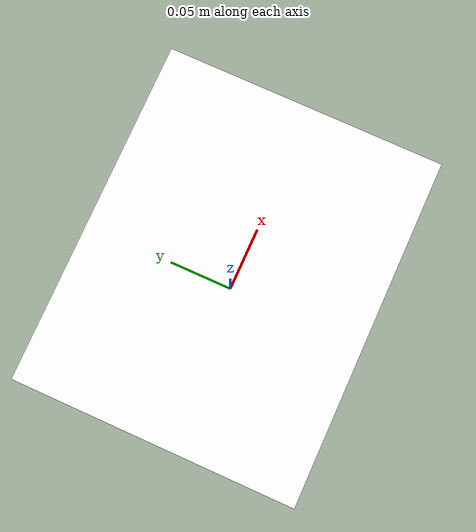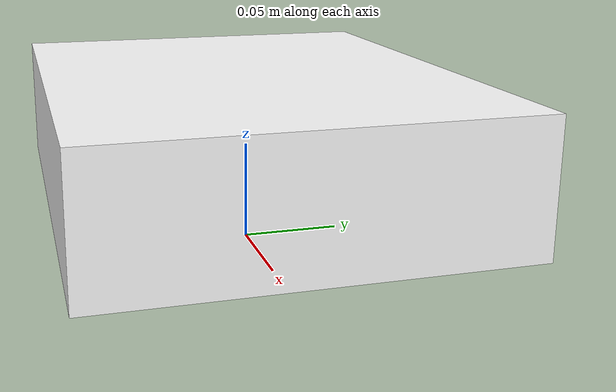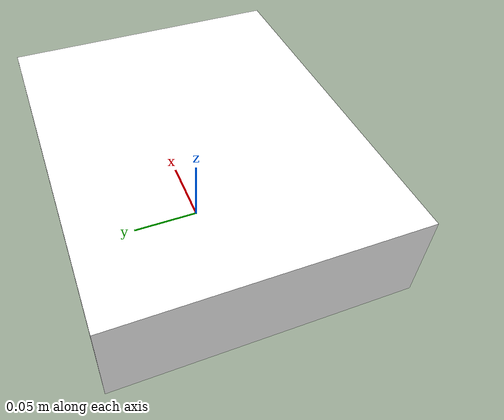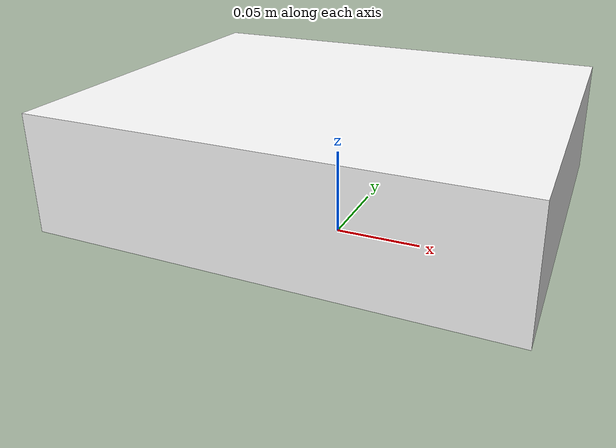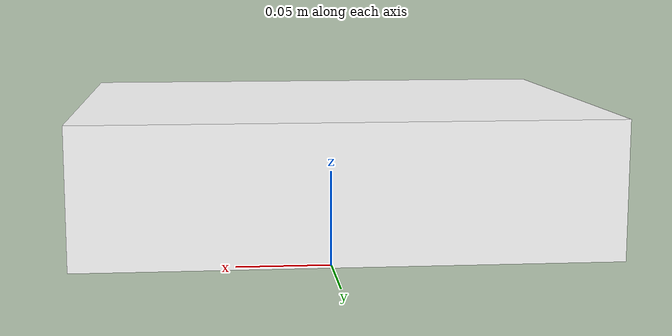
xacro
<?xml version="1.0"?>
<robot xmlns:xacro="http://www.ros.org.wiki.xacro" name="rpibot">

    <xacro:include filename="rpibot_colors.xacro" />

    <link name="base_link">

    </link>

    <joint name="chassis_joint" type="fixed">
        <parent link ="base_link"/>
        <child link="chassis"/>
        <origin xyz="0 0 0.023"/>
    </joint>

    <link name="chassis">
        <visual>
            <origin xyz="0 0 0.0325"/>
            <geometry>
                <box size="0.250 0.202 0.065"/>
            </geometry>
            <material name="white"/>
        </visual>
    </link>

</robot>

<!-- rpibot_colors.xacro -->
<robot xmlns:xacro="http://www.ros.org.wiki.xacro" >

    <material name="white">
        <color rgba="1 1 1 1"/>
    </material>

    <material name="orange">
        <color rgba="1 0.3 0.1 1"/>
    </material>

    <material name="blue">
        <color rgba="0.2 0.2 1 1"/>
    </material>

    <material name="black">
        <color rgba="0 0 0 1"/>
    </material>

</robot>
